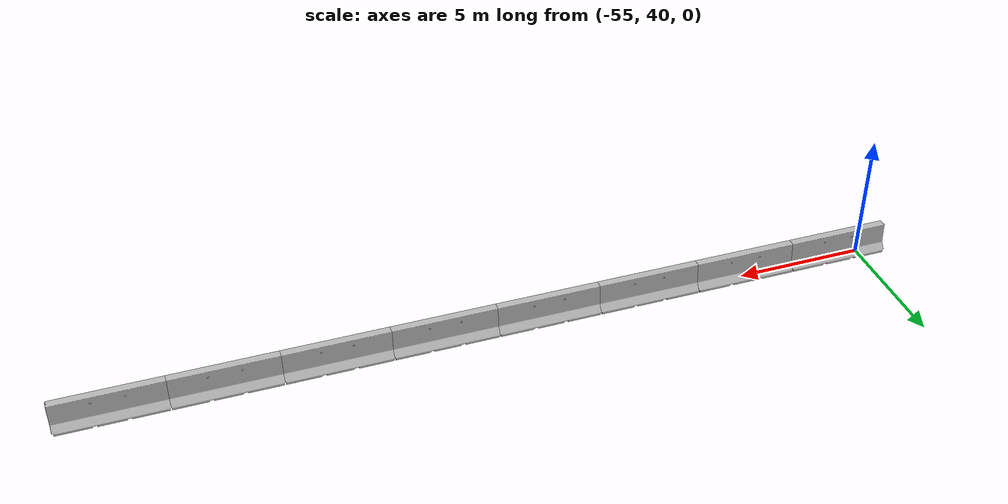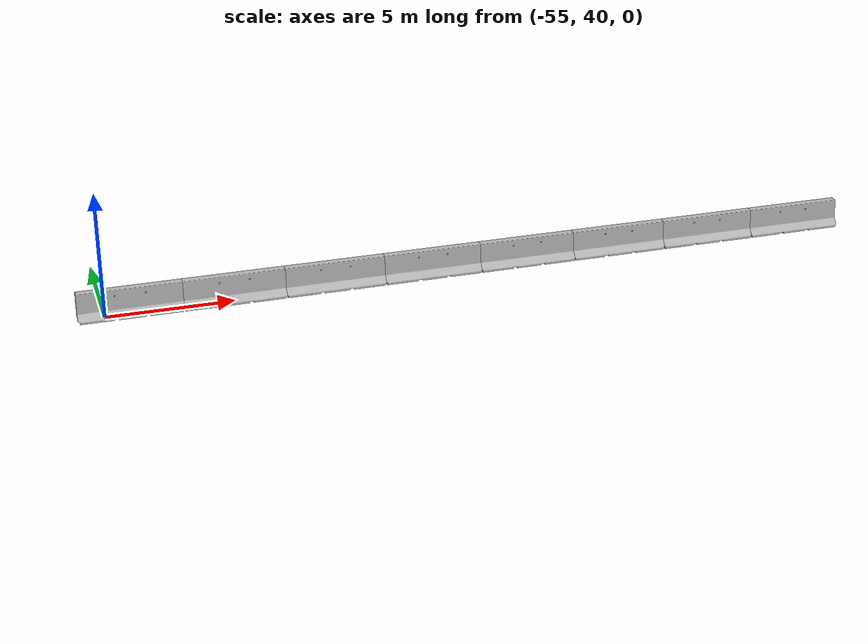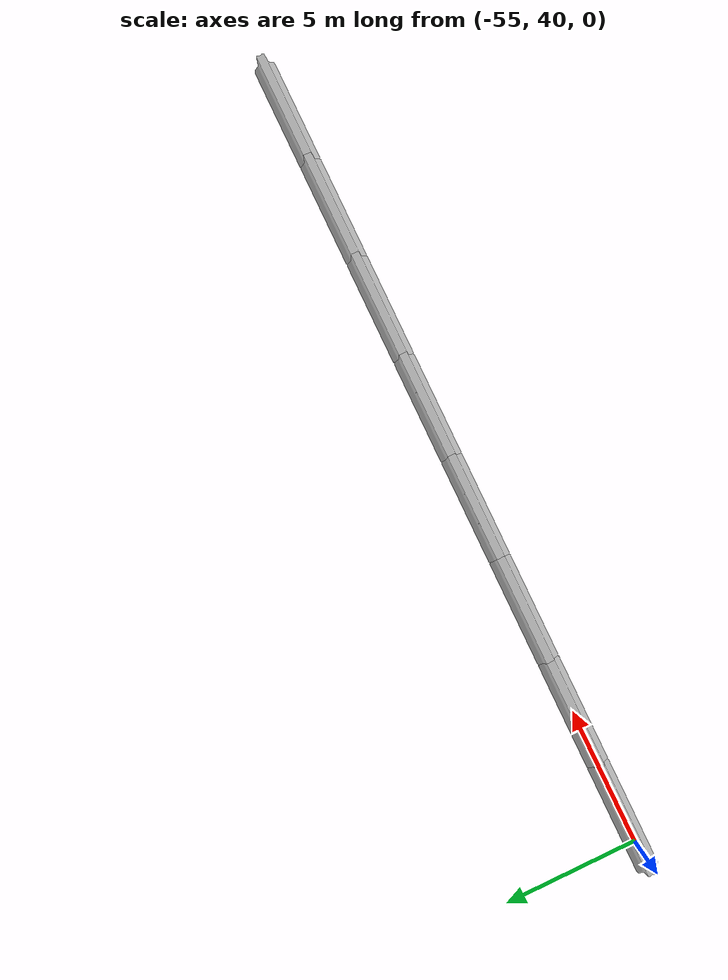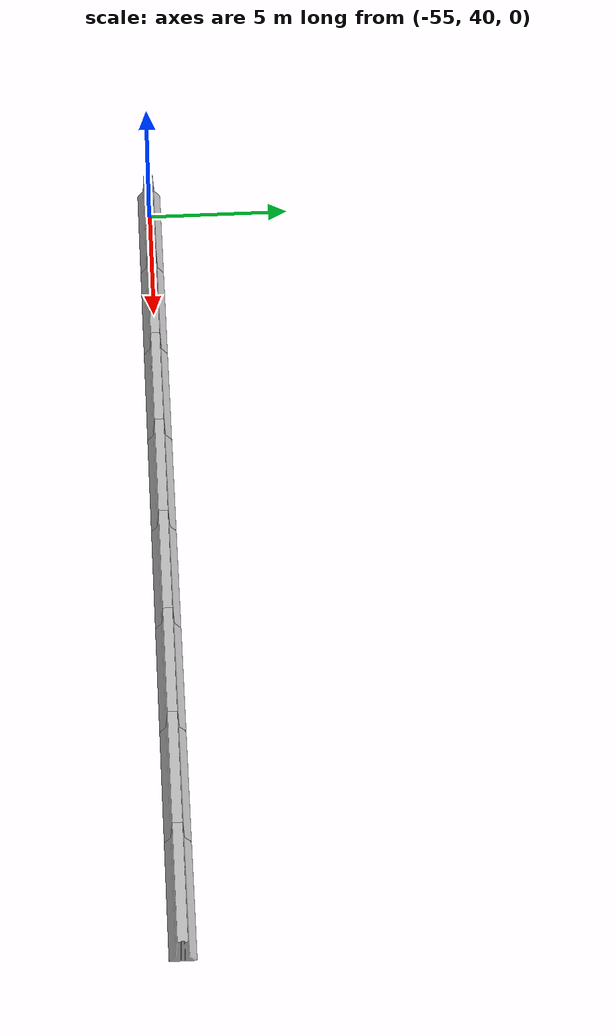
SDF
<sdf version="1.4">
 <world name="default">
  <include><uri>model://sun</uri></include>
  <model name="jersey_barrier_36">
   <pose>-26 40 0 0 0 0</pose>
   <static>1</static>
   <link name="link">
    <visual name="visual">
     <geometry><mesh><uri>model://jersey_barrier/meshes/jersey_barrier.dae</uri></mesh></geometry>
    </visual>
    <collision name="upright">
     <pose>0 0 0.5715 0 -0 0</pose>
     <geometry><box><size>4.06542 0.3063 1.143</size></box></geometry>
    </collision>
    <collision name="base">
     <pose>0 0 0.032258 0 -0 0</pose>
     <geometry><box><size>4.06542 0.8107 0.064516</size></box></geometry>
    </collision>
    <collision name="base2">
     <pose>0 0 0.1 0 -0 0</pose>
     <geometry><box><size>4.06542 0.65 0.1</size></box></geometry>
    </collision>
    <collision name="base3">
     <pose>0 0 0.2 0 -0 0</pose>
     <geometry><box><size>4.06542 0.5 0.1</size></box></geometry>
    </collision>
    <collision name="left-angle">
     <pose>0 -0.224 0.2401 0.9 -0 0</pose>
     <geometry><box><size>4.06542 0.5 0.064516</size></box></geometry>
    </collision>
    <collision name="right-angle">
     <pose>0 0.224 0.2401 -0.9 0 0</pose>
     <geometry><box><size>4.06542 0.5 0.064516</size></box></geometry>
    </collision>
    <velocity_decay><linear>0</linear><angular>0</angular></velocity_decay>
   </link>
   <pose>2.45495 0 0 0 -0 0</pose>
  </model>
  <model name="jersey_barrier_37">
   <pose>-30 40 0 0 0 0</pose>
   <static>1</static>
   <link name="link">
    <visual name="visual">
     <geometry><mesh><uri>model://jersey_barrier/meshes/jersey_barrier.dae</uri></mesh></geometry>
    </visual>
    <collision name="upright">
     <pose>0 0 0.5715 0 -0 0</pose>
     <geometry><box><size>4.06542 0.3063 1.143</size></box></geometry>
    </collision>
    <collision name="base">
     <pose>0 0 0.032258 0 -0 0</pose>
     <geometry><box><size>4.06542 0.8107 0.064516</size></box></geometry>
    </collision>
    <collision name="base2">
     <pose>0 0 0.1 0 -0 0</pose>
     <geometry><box><size>4.06542 0.65 0.1</size></box></geometry>
    </collision>
    <collision name="base3">
     <pose>0 0 0.2 0 -0 0</pose>
     <geometry><box><size>4.06542 0.5 0.1</size></box></geometry>
    </collision>
    <collision name="left-angle">
     <pose>0 -0.224 0.2401 0.9 -0 0</pose>
     <geometry><box><size>4.06542 0.5 0.064516</size></box></geometry>
    </collision>
    <collision name="right-angle">
     <pose>0 0.224 0.2401 -0.9 0 0</pose>
     <geometry><box><size>4.06542 0.5 0.064516</size></box></geometry>
    </collision>
    <velocity_decay><linear>0</linear><angular>0</angular></velocity_decay>
   </link>
   <pose>2.45495 0 0 0 -0 0</pose>
  </model>
  <model name="jersey_barrier_38">
   <pose>-34 40 0 0 0 0</pose>
   <static>1</static>
   <link name="link">
    <visual name="visual">
     <geometry><mesh><uri>model://jersey_barrier/meshes/jersey_barrier.dae</uri></mesh></geometry>
    </visual>
    <collision name="upright">
     <pose>0 0 0.5715 0 -0 0</pose>
     <geometry><box><size>4.06542 0.3063 1.143</size></box></geometry>
    </collision>
    <collision name="base">
     <pose>0 0 0.032258 0 -0 0</pose>
     <geometry><box><size>4.06542 0.8107 0.064516</size></box></geometry>
    </collision>
    <collision name="base2">
     <pose>0 0 0.1 0 -0 0</pose>
     <geometry><box><size>4.06542 0.65 0.1</size></box></geometry>
    </collision>
    <collision name="base3">
     <pose>0 0 0.2 0 -0 0</pose>
     <geometry><box><size>4.06542 0.5 0.1</size></box></geometry>
    </collision>
    <collision name="left-angle">
     <pose>0 -0.224 0.2401 0.9 -0 0</pose>
     <geometry><box><size>4.06542 0.5 0.064516</size></box></geometry>
    </collision>
    <collision name="right-angle">
     <pose>0 0.224 0.2401 -0.9 0 0</pose>
     <geometry><box><size>4.06542 0.5 0.064516</size></box></geometry>
    </collision>
    <velocity_decay><linear>0</linear><angular>0</angular></velocity_decay>
   </link>
   <pose>-10 -2 0 0 -0 0</pose>
  </model>
  <model name="jersey_barrier_39">
   <pose>-38 40 0 0 0 0</pose>
   <static>1</static>
   <link name="link">
    <visual name="visual">
     <geometry><mesh><uri>model://jersey_barrier/meshes/jersey_barrier.dae</uri></mesh></geometry>
    </visual>
    <collision name="upright">
     <pose>0 0 0.5715 0 -0 0</pose>
     <geometry><box><size>4.06542 0.3063 1.143</size></box></geometry>
    </collision>
    <collision name="base">
     <pose>0 0 0.032258 0 -0 0</pose>
     <geometry><box><size>4.06542 0.8107 0.064516</size></box></geometry>
    </collision>
    <collision name="base2">
     <pose>0 0 0.1 0 -0 0</pose>
     <geometry><box><size>4.06542 0.65 0.1</size></box></geometry>
    </collision>
    <collision name="base3">
     <pose>0 0 0.2 0 -0 0</pose>
     <geometry><box><size>4.06542 0.5 0.1</size></box></geometry>
    </collision>
    <collision name="left-angle">
     <pose>0 -0.224 0.2401 0.9 -0 0</pose>
     <geometry><box><size>4.06542 0.5 0.064516</size></box></geometry>
    </collision>
    <collision name="right-angle">
     <pose>0 0.224 0.2401 -0.9 0 0</pose>
     <geometry><box><size>4.06542 0.5 0.064516</size></box></geometry>
    </collision>
    <velocity_decay><linear>0</linear><angular>0</angular></velocity_decay>
   </link>
   <pose>-9.55113 3 0 0 -0 0</pose>
  </model>
  <model name="jersey_barrier_40">
   <pose>-42 40 0 0 0 0</pose>
   <static>1</static>
   <link name="link">
    <visual name="visual">
     <geometry><mesh><uri>model://jersey_barrier/meshes/jersey_barrier.dae</uri></mesh></geometry>
    </visual>
    <collision name="upright">
     <pose>0 0 0.5715 0 -0 0</pose>
     <geometry><box><size>4.06542 0.3063 1.143</size></box></geometry>
    </collision>
    <collision name="base">
     <pose>0 0 0.032258 0 -0 0</pose>
     <geometry><box><size>4.06542 0.8107 0.064516</size></box></geometry>
    </collision>
    <collision name="base2">
     <pose>0 0 0.1 0 -0 0</pose>
     <geometry><box><size>4.06542 0.65 0.1</size></box></geometry>
    </collision>
    <collision name="base3">
     <pose>0 0 0.2 0 -0 0</pose>
     <geometry><box><size>4.06542 0.5 0.1</size></box></geometry>
    </collision>
    <collision name="left-angle">
     <pose>0 -0.224 0.2401 0.9 -0 0</pose>
     <geometry><box><size>4.06542 0.5 0.064516</size></box></geometry>
    </collision>
    <collision name="right-angle">
     <pose>0 0.224 0.2401 -0.9 0 0</pose>
     <geometry><box><size>4.06542 0.5 0.064516</size></box></geometry>
    </collision>
    <velocity_decay><linear>0</linear><angular>0</angular></velocity_decay>
   </link>
   <pose>9 -8 0 0 -0 0</pose>
  </model>
  <model name="jersey_barrier_41">
   <pose>-46 40 0 0 0 0</pose>
   <static>1</static>
   <link name="link">
    <visual name="visual">
     <geometry><mesh><uri>model://jersey_barrier/meshes/jersey_barrier.dae</uri></mesh></geometry>
    </visual>
    <collision name="upright">
     <pose>0 0 0.5715 0 -0 0</pose>
     <geometry><box><size>4.06542 0.3063 1.143</size></box></geometry>
    </collision>
    <collision name="base">
     <pose>0 0 0.032258 0 -0 0</pose>
     <geometry><box><size>4.06542 0.8107 0.064516</size></box></geometry>
    </collision>
    <collision name="base2">
     <pose>0 0 0.1 0 -0 0</pose>
     <geometry><box><size>4.06542 0.65 0.1</size></box></geometry>
    </collision>
    <collision name="base3">
     <pose>0 0 0.2 0 -0 0</pose>
     <geometry><box><size>4.06542 0.5 0.1</size></box></geometry>
    </collision>
    <collision name="left-angle">
     <pose>0 -0.224 0.2401 0.9 -0 0</pose>
     <geometry><box><size>4.06542 0.5 0.064516</size></box></geometry>
    </collision>
    <collision name="right-angle">
     <pose>0 0.224 0.2401 -0.9 0 0</pose>
     <geometry><box><size>4.06542 0.5 0.064516</size></box></geometry>
    </collision>
    <velocity_decay><linear>0</linear><angular>0</angular></velocity_decay>
   </link>
   <pose>10 7 0 0 -0 0</pose>
  </model>
  <model name="jersey_barrier_42">
   <pose>-50 40 0 0 0 0</pose>
   <static>1</static>
   <link name="link">
    <visual name="visual">
     <geometry><mesh><uri>model://jersey_barrier/meshes/jersey_barrier.dae</uri></mesh></geometry>
    </visual>
    <collision name="upright">
     <pose>0 0 0.5715 0 -0 0</pose>
     <geometry><box><size>4.06542 0.3063 1.143</size></box></geometry>
    </collision>
    <collision name="base">
     <pose>0 0 0.032258 0 -0 0</pose>
     <geometry><box><size>4.06542 0.8107 0.064516</size></box></geometry>
    </collision>
    <collision name="base2">
     <pose>0 0 0.1 0 -0 0</pose>
     <geometry><box><size>4.06542 0.65 0.1</size></box></geometry>
    </collision>
    <collision name="base3">
     <pose>0 0 0.2 0 -0 0</pose>
     <geometry><box><size>4.06542 0.5 0.1</size></box></geometry>
    </collision>
    <collision name="left-angle">
     <pose>0 -0.224 0.2401 0.9 -0 0</pose>
     <geometry><box><size>4.06542 0.5 0.064516</size></box></geometry>
    </collision>
    <collision name="right-angle">
     <pose>0 0.224 0.2401 -0.9 0 0</pose>
     <geometry><box><size>4.06542 0.5 0.064516</size></box></geometry>
    </collision>
    <velocity_decay><linear>0</linear><angular>0</angular></velocity_decay>
   </link>
   <pose>-9 7.4858 0 0 -0 0</pose>
  </model>
  <model name="jersey_barrier_43">
   <pose>-54 40 0 0 0 0</pose>
   <static>1</static>
   <link name="link">
    <visual name="visual">
     <geometry><mesh><uri>model://jersey_barrier/meshes/jersey_barrier.dae</uri></mesh></geometry>
    </visual>
    <collision name="upright">
     <pose>0 0 0.5715 0 -0 0</pose>
     <geometry><box><size>4.06542 0.3063 1.143</size></box></geometry>
    </collision>
    <collision name="base">
     <pose>0 0 0.032258 0 -0 0</pose>
     <geometry><box><size>4.06542 0.8107 0.064516</size></box></geometry>
    </collision>
    <collision name="base2">
     <pose>0 0 0.1 0 -0 0</pose>
     <geometry><box><size>4.06542 0.65 0.1</size></box></geometry>
    </collision>
    <collision name="base3">
     <pose>0 0 0.2 0 -0 0</pose>
     <geometry><box><size>4.06542 0.5 0.1</size></box></geometry>
    </collision>
    <collision name="left-angle">
     <pose>0 -0.224 0.2401 0.9 -0 0</pose>
     <geometry><box><size>4.06542 0.5 0.064516</size></box></geometry>
    </collision>
    <collision name="right-angle">
     <pose>0 0.224 0.2401 -0.9 0 0</pose>
     <geometry><box><size>4.06542 0.5 0.064516</size></box></geometry>
    </collision>
    <velocity_decay><linear>0</linear><angular>0</angular></velocity_decay>
   </link>
   <pose>2.45495 0 0 0 -0 0</pose>
  </model>
 </world>
</sdf>
